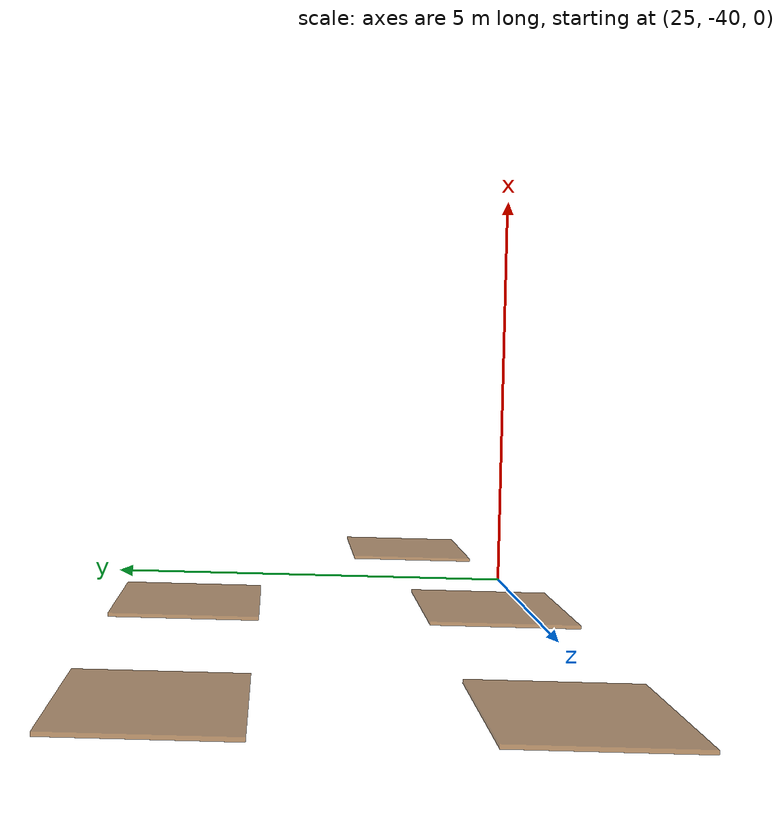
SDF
<sdf version="1.7">
 <world name="world">
  <include><uri>model://sun</uri></include>
  <model name="L1_door_toilet">
   <pose>25.5080405780083 -38.67795283295823 0.0 0 0 1.5707963267948966</pose>
   <link name="right">
    <pose>0 0 1.11 0 0 0</pose>
    <visual name="right_visual">
     <geometry><box><size>1.3763065531526217 0.03 2.2</size></box></geometry>
     <material><ambient>0.5 0.25 0 0.6</ambient><diffuse>0.5 0.25 0 0.6</diffuse></material>
    </visual>
    <collision name="right_collision">
     <geometry><box><size>1.3763065531526217 0.03 2.2</size></box></geometry>
     <surface><contact><collide_bitmask>0x02</collide_bitmask></contact></surface>
    </collision>
    <inertial>
     <mass>50.0</mass>
     <inertia><ixx>20.17041666666667</ixx><iyy>28.059248867711883</iyy><izz>7.89633220104521</izz></inertia>
    </inertial>
   </link>
   <joint name="right_joint" type="revolute">
    <parent>world</parent>
    <child>right</child>
    <axis><xyz>0 0 1</xyz><limit><lower>0</lower><upper>1.57</upper></limit></axis>
    <pose>0.6931532765763109 0 0 0 0 0</pose>
   </joint>
   <plugin name="single_hinged_door" filename="libsingle_hinged_door_plugin.so">
    <ros><namespace>/doors/L1_door_toilet</namespace></ros>
    <right_joint>right_joint</right_joint>
    <open_angle>1.57</open_angle>
    <kp>150.0</kp>
    <kd>80.0</kd>
   </plugin>
  </model>
  <model name="L2_door_stair1">
   <pose>25.49893682694276 -36.20450873857642 5.0 0 0 -1.5710704870886905</pose>
   <link name="right">
    <pose>0 0 1.11 0 0 0</pose>
    <visual name="right_visual">
     <geometry><box><size>1.3771448278477716 0.03 2.2</size></box></geometry>
     <material><ambient>0.5 0.25 0 0.6</ambient><diffuse>0.5 0.25 0 0.6</diffuse></material>
    </visual>
    <collision name="right_collision">
     <geometry><box><size>1.3771448278477716 0.03 2.2</size></box></geometry>
     <surface><contact><collide_bitmask>0x02</collide_bitmask></contact></surface>
    </collision>
    <inertial>
     <mass>50.0</mass>
     <inertia><ixx>20.17041666666667</ixx><iyy>28.068866153616124</iyy><izz>7.905949486949452</izz></inertia>
    </inertial>
   </link>
   <joint name="right_joint" type="revolute">
    <parent>world</parent>
    <child>right</child>
    <axis><xyz>0 0 -1</xyz><limit><lower>0</lower><upper>1.57</upper></limit></axis>
    <pose>0.6935724139238858 0 0 0 0 0</pose>
   </joint>
   <plugin name="single_hinged_door" filename="libsingle_hinged_door_plugin.so">
    <ros><namespace>/doors/L2_door_stair1</namespace></ros>
    <right_joint>right_joint</right_joint>
    <open_angle>1.57</open_angle>
    <kp>150.0</kp>
    <kd>80.0</kd>
   </plugin>
  </model>
  <model name="L2_door_restricted_area">
   <pose>25.49813059088177 -39.145255663094744 5.0 0 0 1.5705221665011053</pose>
   <link name="right">
    <pose>0 0 1.11 0 0 0</pose>
    <visual name="right_visual">
     <geometry><box><size>1.3771448278477787 0.03 2.2</size></box></geometry>
     <material><ambient>0.5 0.25 0 0.6</ambient><diffuse>0.5 0.25 0 0.6</diffuse></material>
    </visual>
    <collision name="right_collision">
     <geometry><box><size>1.3771448278477787 0.03 2.2</size></box></geometry>
     <surface><contact><collide_bitmask>0x02</collide_bitmask></contact></surface>
    </collision>
    <inertial>
     <mass>50.0</mass>
     <inertia><ixx>20.17041666666667</ixx><iyy>28.068866153616206</iyy><izz>7.905949486949533</izz></inertia>
    </inertial>
   </link>
   <joint name="right_joint" type="prismatic">
    <parent>world</parent>
    <child>right</child>
    <axis>
     <xyz>1 0 0</xyz>
     <limit><lower>0.0</lower><upper>1.3871448278477787</upper><effort>500.0</effort></limit>
    </axis>
   </joint>
   <plugin name="single_sliding_door" filename="libsingle_sliding_door_plugin.so">
    <ros><namespace>/doors/L2_door_restricted_area</namespace></ros>
    <right_joint>right_joint</right_joint>
    <open_distance>1.3</open_distance>
    <kp>100.0</kp>
    <kd>120.0</kd>
   </plugin>
  </model>
  <model name="L3_door_stair1">
   <pose>25.49894062994305 -36.19063729081926 10.0 0 0 -1.57107048708869</pose>
   <link name="right">
    <pose>0 0 1.11 0 0 0</pose>
    <visual name="right_visual">
     <geometry><box><size>1.3494019312908105 0.03 2.2</size></box></geometry>
     <material><ambient>0.5 0.25 0 0.6</ambient><diffuse>0.5 0.25 0 0.6</diffuse></material>
    </visual>
    <collision name="right_collision">
     <geometry><box><size>1.3494019312908105 0.03 2.2</size></box></geometry>
     <surface><contact><collide_bitmask>0x02</collide_bitmask></contact></surface>
    </collision>
    <inertial>
     <mass>50.0</mass>
     <inertia><ixx>20.17041666666667</ixx><iyy>27.75368988404738</iyy><izz>7.590773217380706</izz></inertia>
    </inertial>
   </link>
   <joint name="right_joint" type="revolute">
    <parent>world</parent>
    <child>right</child>
    <axis><xyz>0 0 -1</xyz><limit><lower>0</lower><upper>1.57</upper></limit></axis>
    <pose>0.6797009656454053 0 0 0 0 0</pose>
   </joint>
   <plugin name="single_hinged_door" filename="libsingle_hinged_door_plugin.so">
    <ros><namespace>/doors/L3_door_stair1</namespace></ros>
    <right_joint>right_joint</right_joint>
    <open_angle>1.57</open_angle>
    <kp>150.0</kp>
    <kd>80.0</kd>
   </plugin>
  </model>
  <model name="L3_door_restricted_area">
   <pose>25.49813059088177 -39.145255663094744 10.0 0 0 1.5705221665011053</pose>
   <link name="right">
    <pose>0 0 1.11 0 0 0</pose>
    <visual name="right_visual">
     <geometry><box><size>1.3771448278477787 0.03 2.2</size></box></geometry>
     <material><ambient>0.5 0.25 0 0.6</ambient><diffuse>0.5 0.25 0 0.6</diffuse></material>
    </visual>
    <collision name="right_collision">
     <geometry><box><size>1.3771448278477787 0.03 2.2</size></box></geometry>
     <surface><contact><collide_bitmask>0x02</collide_bitmask></contact></surface>
    </collision>
    <inertial>
     <mass>50.0</mass>
     <inertia><ixx>20.17041666666667</ixx><iyy>28.068866153616206</iyy><izz>7.905949486949533</izz></inertia>
    </inertial>
   </link>
   <joint name="right_joint" type="prismatic">
    <parent>world</parent>
    <child>right</child>
    <axis>
     <xyz>1 0 0</xyz>
     <limit><lower>0.0</lower><upper>1.3871448278477787</upper><effort>500.0</effort></limit>
    </axis>
   </joint>
   <plugin name="single_sliding_door" filename="libsingle_sliding_door_plugin.so">
    <ros><namespace>/doors/L3_door_restricted_area</namespace></ros>
    <right_joint>right_joint</right_joint>
    <open_distance>1.3</open_distance>
    <kp>100.0</kp>
    <kd>120.0</kd>
   </plugin>
  </model>
 </world>
</sdf>
